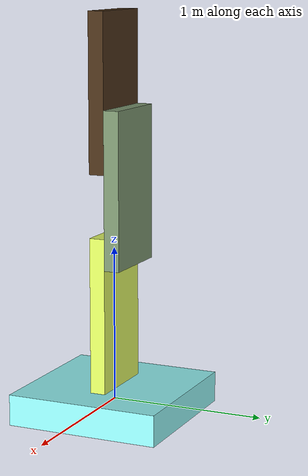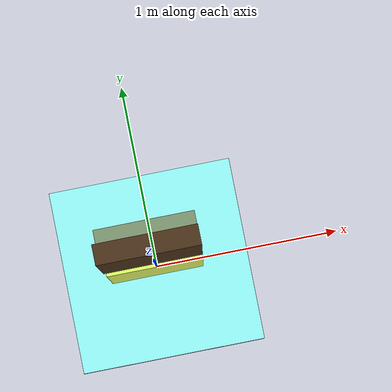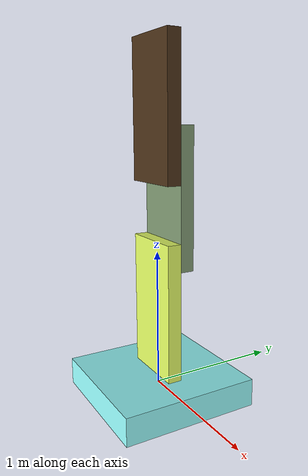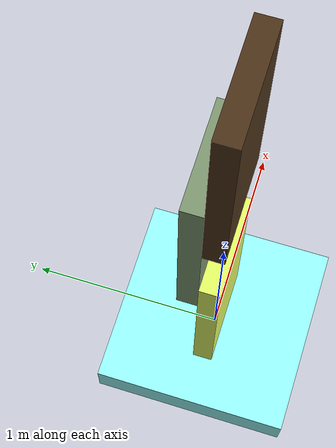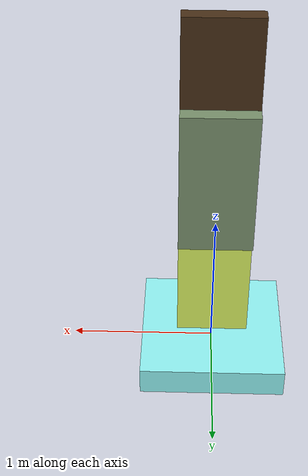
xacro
<?xml version="1.0"?>

<robot name ="arm" xmlns:xacro="http/www.ros.org/wiki/xacro">

    <link name ="Base_link">
        <visual>
            <origin xyz="0 0 0" rpy="0 0 0"></origin>
            <geometry>
                <box size = "1 1 0.2"/>
            </geometry>
            <material name="Cyan">
                <color rgba="0.6 1.0 1.0 1.0"/>
            </material>
        </visual>
        <inertial>

            <mass value="10"/>
            <origin xyz="0 0 0" rpy=" 0 0 0"/>
            <inertia
                ixx="0.86" ixy="0" ixz="0"
                iyy="1.6" iyz="0"
                izz="1.6"
            />

         </inertial>

         <collision name='collision'>
            <geometry>
              <box size="1 1 0.2"/>
            </geometry>
         </collision>
    </link>

    <joint name="Base_link1_joint" type = "revolute">
        <axis xyz="0 0 1"/>
        <limit effort ="1000.0" lower ="-3.14" upper="3.14" velocity ="0.5"/>
        <origin xyz="0 0 0.1" rpy="0 0 0"/>
        <parent link="Base_link"/>
        <child link="Link_1"/>
    </joint>

    <link name ="Link_1">
        <visual>
            <origin xyz="0 0 0.5" rpy="1.5707 1.5707 0"></origin>
            <geometry>
                <box size = "1 0.5 0.1"/>
            </geometry>
            <material name="Red">
                <color rgba="0.9 1.0 0.4 1.0"/>
            </material>
        </visual>
        <inertial>

            <mass value="1"/>
            <origin xyz="0 0 0" rpy=" 0 0 0"/>
            <inertia
                ixx="0.216" ixy="0" ixz="0"
                iyy="0.104" iyz="0"
                izz="0.104"
            />

         </inertial>

         <collision name='collision'>
            <geometry>
              <box size="1 0.5 0.1"/>
            </geometry>
         </collision>
    </link>

    <joint name="Link1_Link2_joint" type="revolute">
        <axis xyz ="0 1 0"/>
        <limit effort ="1000.0" lower ="-3.14" upper="3.14" velocity ="0.5"/>
        <origin xyz="0 0.05 0.8" rpy="0 0 0"/>
        <parent link="Link_1"/>
        <child link="Link_2"/>
    </joint>

    <link name ="Link_2">
        <visual>
            <origin xyz="0 0.05 0.5" rpy="1.5707 1.5707 0"></origin>
            <geometry>
                <box size = "1 0.5 0.1"/>
            </geometry>
            <material name="White">
                <color rgba="0.5 0.6 0.45 1.0"/>
            </material>
        </visual>
        <inertial>

            <mass value="1"/>
            <origin xyz="0 0 0" rpy=" 0 0 0"/>
            <inertia
                ixx="0.216" ixy="0" ixz="0"
                iyy="0.104" iyz="0"
                izz="0.104"
            />

         </inertial>

         <collision name='collision'>
            <geometry>
              <box size="1 0.5 0.1"/>
            </geometry>
         </collision>
    </link>

    <joint name="Link2_Link3_joint" type="revolute">
        <axis xyz ="0 1 0"/>
        <limit effort ="1000.0" lower ="-3.14" upper="3.14" velocity ="0.5"/>
        <origin xyz="0 -0.05 0.8" rpy="0 0 0"/>
        <parent link="Link_2"/>
        <child link="Link_3"/>
    </joint>
    <link name ="Link_3">
        <visual>
            <origin xyz="0 0 0.3" rpy="1.5707 1.5707 0"></origin>
            <geometry>
                <box size = "1 0.5 0.1"/>
            </geometry>
            <material name="blue">
                <color rgba="0.3 0.2 0.1 1.0"/>
            </material>
        </visual>
        <inertial>

            <mass value="1"/>
            <origin xyz="0 0 0" rpy=" 0 0 0"/>
            <inertia
                ixx="0.216" ixy="0" ixz="0"
                iyy="0.104" iyz="0"
                izz="0.104"
            />

         </inertial>

         <collision name='collision'>
            <geometry>
              <box size="1 0.5 0.1"/>
            </geometry>
         </collision>
    </link>

</robot>
